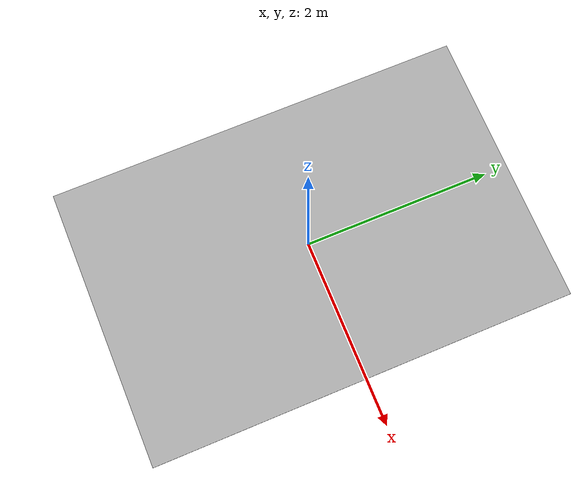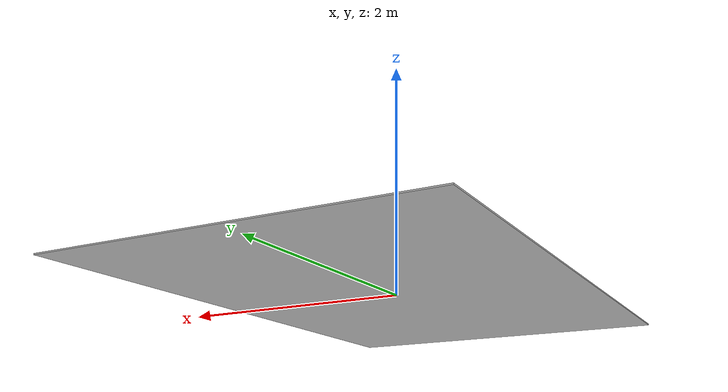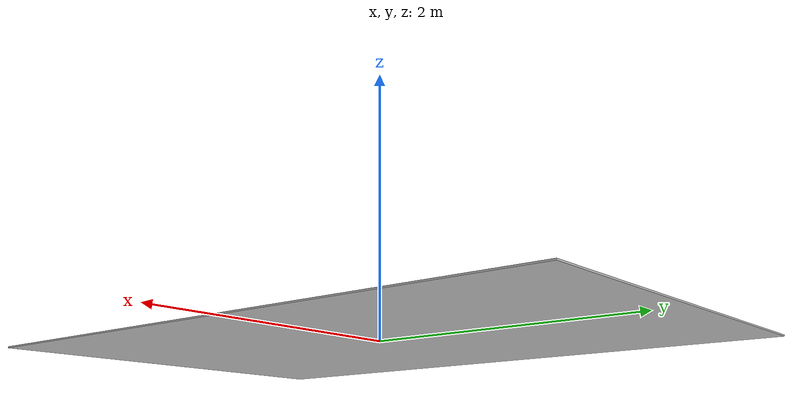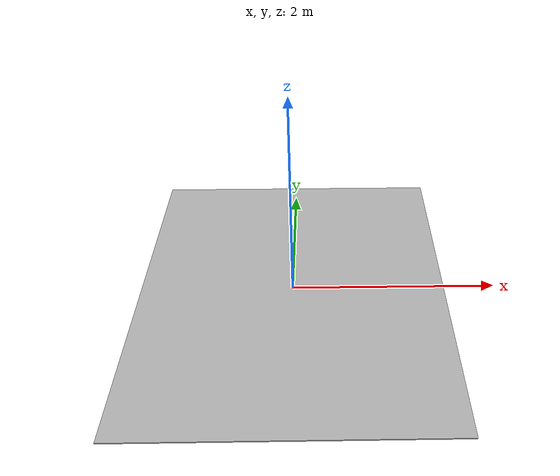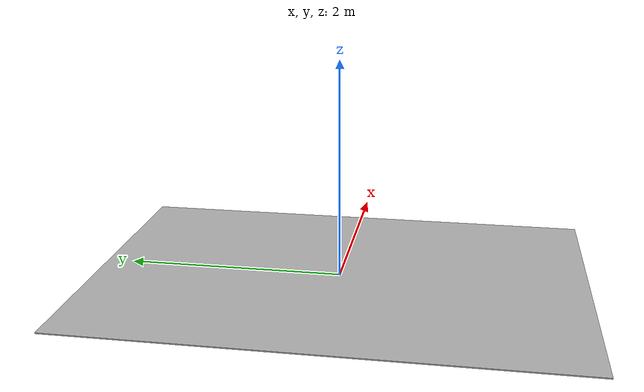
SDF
<?xml version='1.0'?>
<sdf version='1.7'>
  <model name='Pattern_Plane'>
    <static>0</static>
    <link name='plane'>
      <pose>0 0 0.0 0 -0 0</pose>
      <inertial>
        <inertia>
          <ixx>500</ixx>
          <ixy>0</ixy>
          <ixz>0</ixz>
          <iyy>500</iyy>
          <iyz>0</iyz>
          <izz>1000</izz>
        </inertia>
        <mass>1500</mass>
        <pose>0 0 0 0 -0 0</pose>
      </inertial>
      <self_collide>0</self_collide>
      <enable_wind>0</enable_wind>
      <kinematic>0</kinematic>
      <gravity>0</gravity>
      <visual name='plane_visual'>
        <cast_shadows>0</cast_shadows>
        <pose>0 0 0 0 0 0</pose>
        <geometry>
          <box>
            <size>3 4.5 0.01</size>
          </box>
        </geometry>
        <material>
          <script>
            <uri>model://Pattern_Plane/materials/scripts</uri>
            <uri>model://Pattern_Plane/materials/textures</uri>
            <name>SurfacePattern/Image_1</name>

          </script>
          <shader type='pixel'>
            <normal_map>__default__</normal_map>
          </shader>
          <emissive>0 0 0 1</emissive>
        </material>
      </visual>
      <sensor name='plane_contact_sensor' type='contact'>
        <always_on>1</always_on>
        <visualize>1</visualize>
        <contact>
          <collision>plane_collision</collision>
          <topic>__default_topic__</topic>
        </contact>
        <plugin name='contact_plugin' filename='libgazebo_ros_bumper.so'>
          <bumperTopicName>/ENV/BodyContact</bumperTopicName>
          <frameName>plane</frameName>
          <alwaysOn>true</alwaysOn>
          <updateRate>500</updateRate>
        </plugin>
        <pose>0 0 0 0 -0 0</pose>
      </sensor>
    </link>

  </model>
</sdf>
